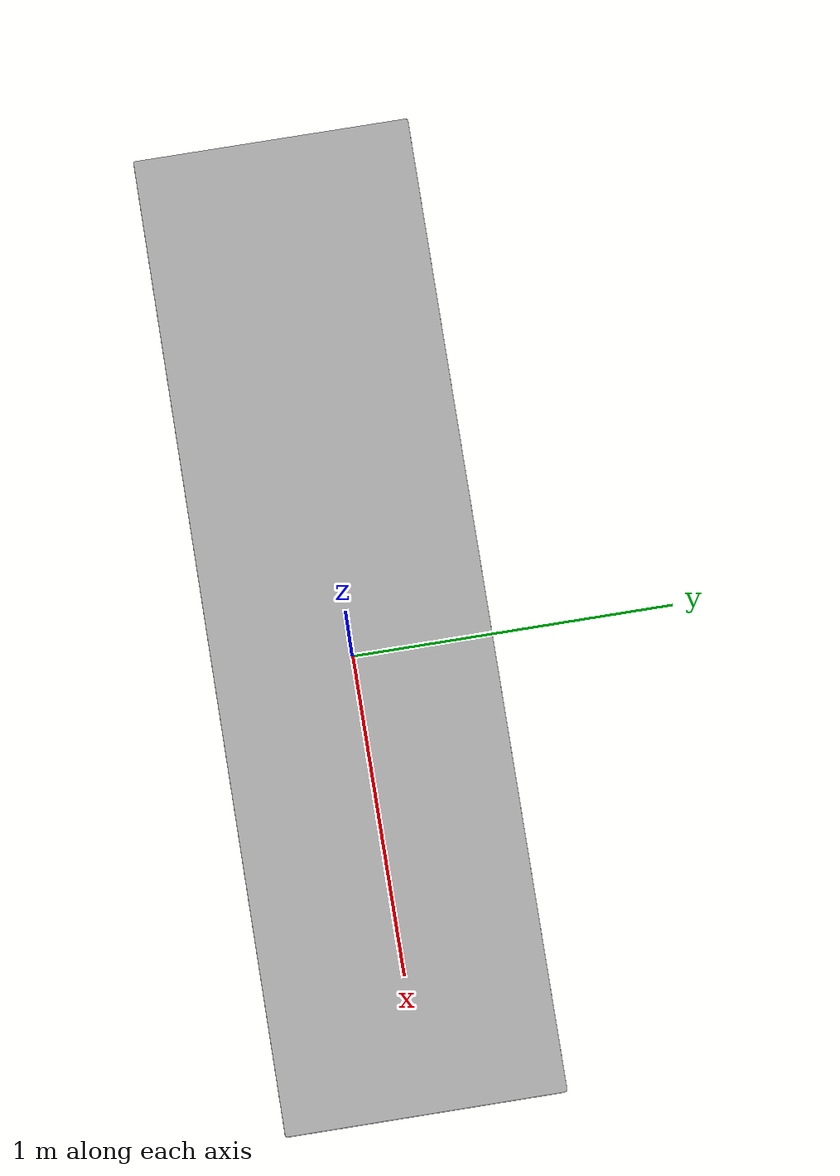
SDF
<?xml version="1.0" ?>
<sdf version="1.6">
  <model name="aws_robomaker_retail_DeskA_01">
    <link name="link">
      <inertial>
        <mass>20</mass>
        <inertia>
          <ixx>3.49717266</ixx>
          <ixy>0</ixy>
          <ixz>0</ixz>
          <iyy>23.5598501</iyy>
          <iyz>0</iyz>
          <izz>23.570161273</izz>
        </inertia>
      </inertial>
      <collision name="collision">
        <geometry>
          <mesh>
            <uri>file://models/aws_simulation/aws_robomaker_retail_DeskA_01/meshes/aws_DeskA_01_collision.DAE</uri>
            <scale>0.8 0.8 0.8</scale>
          </mesh>
        </geometry>
      </collision>
      <visual name="visual">
	    <geometry>
          <mesh>
            <uri>file://models/aws_simulation/aws_robomaker_retail_DeskA_01/meshes/aws_DeskA_01_visual.DAE</uri>
            <scale>0.8 0.8 0.8</scale>
          </mesh>
        </geometry>
        <meta>
          <layer>1</layer>
        </meta>
      </visual>
    </link>
	<static>1</static>
  </model>
</sdf>
